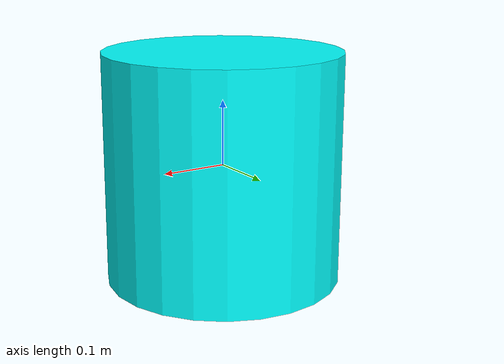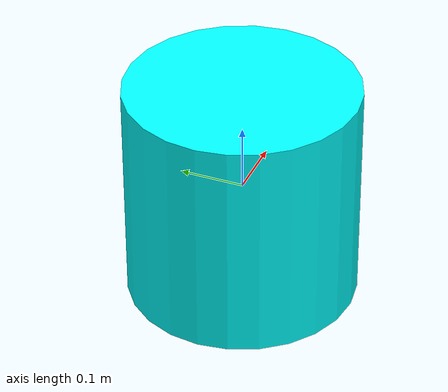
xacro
<?xml version="1.0"?>

<robot name="omre_body" xmlns:xacro="http://ros.org/wiki/xacro">
	<link name = "base_link">
		<visual>
			<origin xyz="0 0 0" rpy="0 0 0" />
			<geometry>
				<cylinder radius="0.18" length="0.35" />
			</geometry>
			<material name="Cyan">
				<color rgba="0 1.0 1.0 1.0"/>
			</material>
		</visual>
	</link>
</robot>
